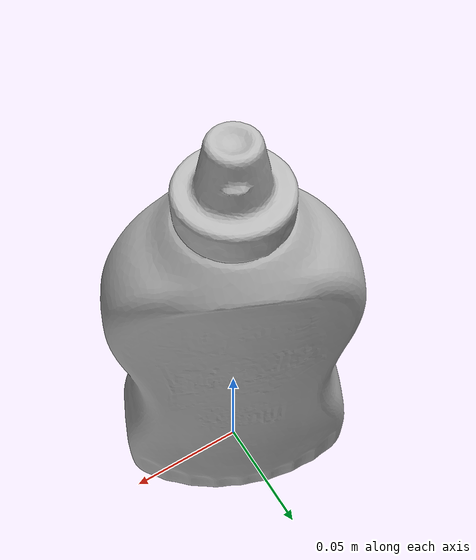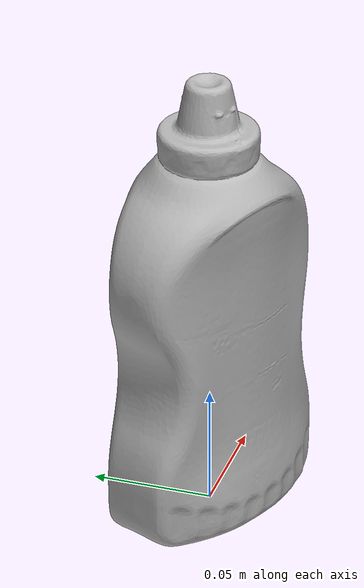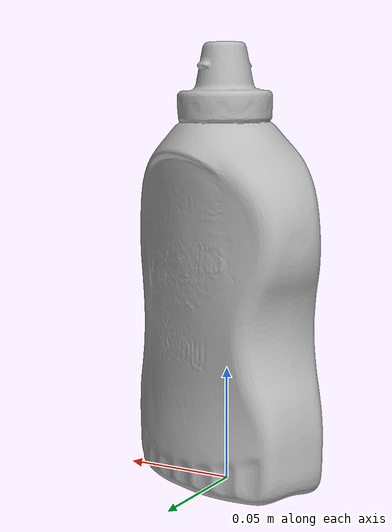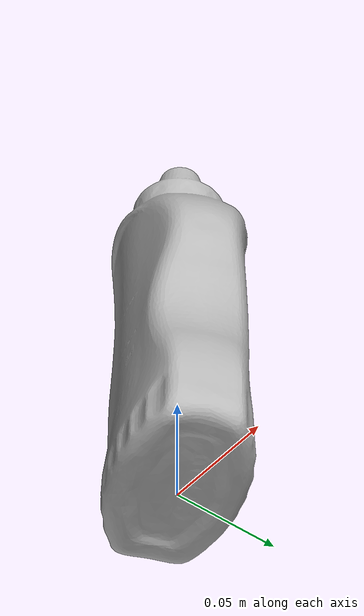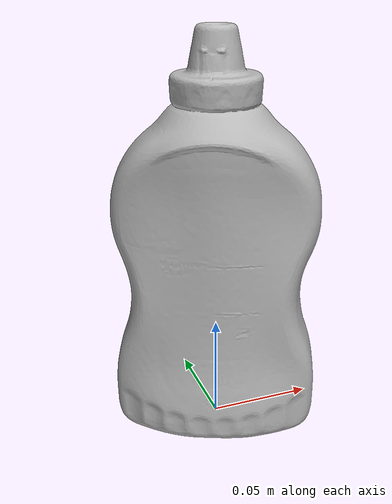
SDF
<?xml version="1.0" ?>
<sdf version='1.8'>
  <model name='ycb_006_mustard_bottle'>
    <link name='body'>
      <inertial>
        <mass>0.603</mass>
        <pose>0.000127668595 0.000241623801 0.0780782712 0 0 0</pose>
        <inertia>
          <ixx>0.00146556626346</ixx>
          <ixy>7.58485992907e-05</ixy>
          <ixz>-4.97418977917e-06</ixz>
          <iyy>0.00161293604296</iyy>
          <iyz>-7.04889419187e-06</iyz>
          <izz>0.000423009992553</izz>
        </inertia>
      </inertial>
      <visual name='ycb_006_mustard_bottle_visual'>
        <pose>0.015182 0.023351 0.003036 0 0 0</pose>
        <geometry>
          <mesh>
            <uri>model://ycb_006_mustard_bottle/meshes/textured.dae</uri>
          </mesh>
        </geometry>
      </visual>
      <collision name='ycb_006_mustard_bottle_collision'>
        <pose>0.015182 0.023351 0.003036 0 0 0</pose>
        <geometry>
          <mesh>
            <uri>model://ycb_006_mustard_bottle/meshes/nontextured.stl</uri>
          </mesh>
        </geometry>
        <max_contacts>10</max_contacts>
        <surface>
          <contact>
            <ode>
              <kp>1e15</kp>
              <kd>1e13</kd>
            </ode>
          </contact>
        </surface>
      </collision>
    </link>
  </model>
</sdf>
